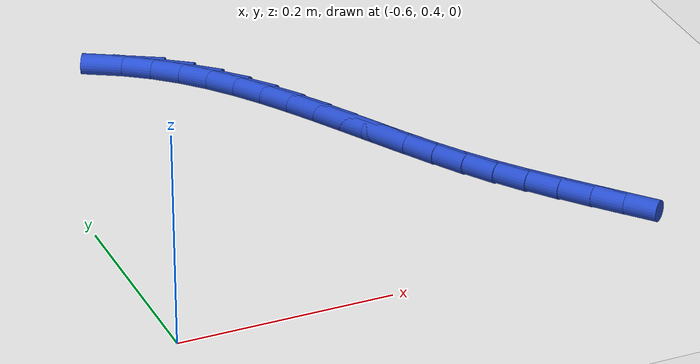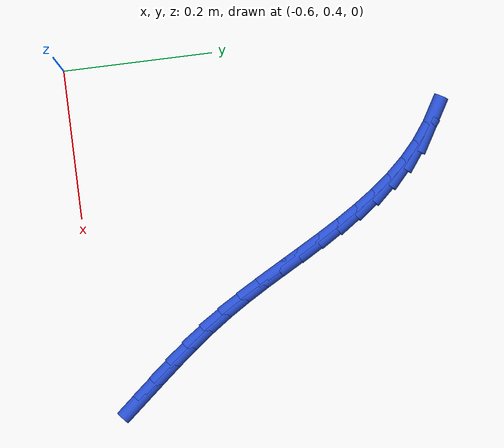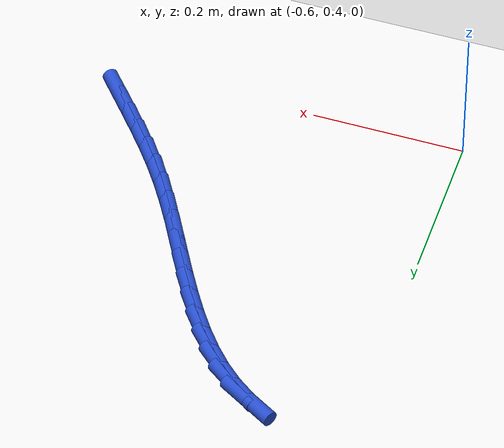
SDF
<sdf version="1.6">
 <world name="default">
  <model name="ground_plane">
   <static>1</static>
   <link name="link">
    <collision name="collision">
     <geometry><plane><normal>0 0 1</normal><size>100 100</size></plane></geometry>
     <surface><friction><ode><mu>100</mu><mu2>50</mu2></ode></friction></surface>
    </collision>
    <visual name="visual">
     <cast_shadows>0</cast_shadows>
     <geometry><plane><normal>0 0 1</normal><size>100 100</size></plane></geometry>
     <material>
      <script><uri>file://media/materials/scripts/gazebo.material</uri><name>Gazebo/WhiteGlow</name></script>
     </material>
    </visual>
   </link>
  </model>
  <model name="line">
   <link name="link_16">
    <pose>-0.1556191127891852 0.45315294590504357 0.01 0 1.57 -0.8655565255962655</pose>
    <collision name="collision">
     <geometry><cylinder><radius>0.01</radius><length>0.08</length></cylinder></geometry>
    </collision>
    <visual name="visual">
     <material>
      <script><name>Gazebo/Blue</name><uri>file://media/materials/scripts/gazebo.material</uri></script>
     </material>
     <geometry><cylinder><radius>0.01</radius><length>0.08</length></cylinder></geometry>
    </visual>
   </link>
   <link name="link_17">
    <pose>-0.17596195966174907 0.4770495711044794 0.01 0 1.57 -0.872697957210107</pose>
    <collision name="collision">
     <geometry><cylinder><radius>0.01</radius><length>0.08</length></cylinder></geometry>
    </collision>
    <visual name="visual">
     <material>
      <script><name>Gazebo/Blue</name><uri>file://media/materials/scripts/gazebo.material</uri></script>
     </material>
     <geometry><cylinder><radius>0.01</radius><length>0.08</length></cylinder></geometry>
    </visual>
   </link>
   <link name="link_18">
    <pose>-0.19624529197877905 0.501223941599826 0.01 0 1.57 -0.8910345357654627</pose>
    <collision name="collision">
     <geometry><cylinder><radius>0.01</radius><length>0.08</length></cylinder></geometry>
    </collision>
    <visual name="visual">
     <material>
      <script><name>Gazebo/Blue</name><uri>file://media/materials/scripts/gazebo.material</uri></script>
     </material>
     <geometry><cylinder><radius>0.01</radius><length>0.08</length></cylinder></geometry>
    </visual>
   </link>
   <link name="link_19">
    <pose>-0.21616844110531708 0.5258731448446303 0.01 0 1.57 -0.920469339215087</pose>
    <collision name="collision">
     <geometry><cylinder><radius>0.01</radius><length>0.08</length></cylinder></geometry>
    </collision>
    <visual name="visual">
     <material>
      <script><name>Gazebo/Blue</name><uri>file://media/materials/scripts/gazebo.material</uri></script>
     </material>
     <geometry><cylinder><radius>0.01</radius><length>0.08</length></cylinder></geometry>
    </visual>
   </link>
   <link name="link_20">
    <pose>-0.235430738406405 0.5511942682924398 0.01 0 1.57 -0.96083028017635</pose>
    <collision name="collision">
     <geometry><cylinder><radius>0.01</radius><length>0.08</length></cylinder></geometry>
    </collision>
    <visual name="visual">
     <material>
      <script><name>Gazebo/Blue</name><uri>file://media/materials/scripts/gazebo.material</uri></script>
     </material>
     <geometry><cylinder><radius>0.01</radius><length>0.08</length></cylinder></geometry>
    </visual>
   </link>
   <link name="link_21">
    <pose>-0.25373319038439 0.5773829669955516 0.01 0 1.57 -1.0042836720142712</pose>
    <collision name="collision">
     <geometry><cylinder><radius>0.01</radius><length>0.08</length></cylinder></geometry>
    </collision>
    <visual name="visual">
     <material>
      <script><name>Gazebo/Blue</name><uri>file://media/materials/scripts/gazebo.material</uri></script>
     </material>
     <geometry><cylinder><radius>0.01</radius><length>0.08</length></cylinder></geometry>
    </visual>
   </link>
   <link name="link_22">
    <pose>-0.2709647914809507 0.6044741484911897 0.01 0 1.57 -1.0364075297354607</pose>
    <collision name="collision">
     <geometry><cylinder><radius>0.01</radius><length>0.08</length></cylinder></geometry>
    </collision>
    <visual name="visual">
     <material>
      <script><name>Gazebo/Blue</name><uri>file://media/materials/scripts/gazebo.material</uri></script>
     </material>
     <geometry><cylinder><radius>0.01</radius><length>0.08</length></cylinder></geometry>
    </visual>
   </link>
   <link name="link_23">
    <pose>-0.2873719839273866 0.6321970685595827 0.01 0 1.57 -1.0559378814561677</pose>
    <collision name="collision">
     <geometry><cylinder><radius>0.01</radius><length>0.08</length></cylinder></geometry>
    </collision>
    <visual name="visual">
     <material>
      <script><name>Gazebo/Blue</name><uri>file://media/materials/scripts/gazebo.material</uri></script>
     </material>
     <geometry><cylinder><radius>0.01</radius><length>0.08</length></cylinder></geometry>
    </visual>
   </link>
   <link name="link_24">
    <pose>-0.30324123016649535 0.6602467619050015 0.01 0 1.57 -1.0630859813531304</pose>
    <collision name="collision">
     <geometry><cylinder><radius>0.01</radius><length>0.08</length></cylinder></geometry>
    </collision>
    <visual name="visual">
     <material>
      <script><name>Gazebo/Blue</name><uri>file://media/materials/scripts/gazebo.material</uri></script>
     </material>
     <geometry><cylinder><radius>0.01</radius><length>0.08</length></cylinder></geometry>
    </visual>
   </link>
   <link name="link_25">
    <pose>-0.31885899264107476 0.6883182632317167 0.01 0 1.57 -1.057811188708045</pose>
    <collision name="collision">
     <geometry><cylinder><radius>0.01</radius><length>0.08</length></cylinder></geometry>
    </collision>
    <visual name="visual">
     <material>
      <script><name>Gazebo/Blue</name><uri>file://media/materials/scripts/gazebo.material</uri></script>
     </material>
     <geometry><cylinder><radius>0.01</radius><length>0.08</length></cylinder></geometry>
    </visual>
   </link>
   <link name="link_26">
    <pose>-0.33451173379392257 0.7161066072439994 0.01 0 1.57 -1.0397812821511725</pose>
    <collision name="collision">
     <geometry><cylinder><radius>0.01</radius><length>0.08</length></cylinder></geometry>
    </collision>
    <visual name="visual">
     <material>
      <script><name>Gazebo/Blue</name><uri>file://media/materials/scripts/gazebo.material</uri></script>
     </material>
     <geometry><cylinder><radius>0.01</radius><length>0.08</length></cylinder></geometry>
    </visual>
   </link>
   <link name="link_27">
    <pose>-0.3504859160678367 0.7433068286461207 0.01 0 1.57 -1.008375818661642</pose>
    <collision name="collision">
     <geometry><cylinder><radius>0.01</radius><length>0.08</length></cylinder></geometry>
    </collision>
    <visual name="visual">
     <material>
      <script><name>Gazebo/Blue</name><uri>file://media/materials/scripts/gazebo.material</uri></script>
     </material>
     <geometry><cylinder><radius>0.01</radius><length>0.08</length></cylinder></geometry>
    </visual>
   </link>
   <link name="link_28">
    <pose>-0.3670680019056146 0.7696139621423512 0.01 0 1.57 -0.962745701899153</pose>
    <collision name="collision">
     <geometry><cylinder><radius>0.01</radius><length>0.08</length></cylinder></geometry>
    </collision>
    <visual name="visual">
     <material>
      <script><name>Gazebo/Blue</name><uri>file://media/materials/scripts/gazebo.material</uri></script>
     </material>
     <geometry><cylinder><radius>0.01</radius><length>0.08</length></cylinder></geometry>
    </visual>
   </link>
   <link name="link_29">
    <pose>-0.3845444537500541 0.7947230424369613 0.01 0 1.57 -0.9019613113625815</pose>
    <collision name="collision">
     <geometry><cylinder><radius>0.01</radius><length>0.08</length></cylinder></geometry>
    </collision>
    <visual name="visual">
     <material>
      <script><name>Gazebo/Blue</name><uri>file://media/materials/scripts/gazebo.material</uri></script>
     </material>
     <geometry><cylinder><radius>0.01</radius><length>0.08</length></cylinder></geometry>
    </visual>
   </link>
   <link name="link_30">
    <pose>-0.40320173404395304 0.8183291042342227 0.01 0 1.57 -0.8252958983222832</pose>
    <collision name="collision">
     <geometry><cylinder><radius>0.01</radius><length>0.08</length></cylinder></geometry>
    </collision>
    <visual name="visual">
     <material>
      <script><name>Gazebo/Blue</name><uri>file://media/materials/scripts/gazebo.material</uri></script>
     </material>
     <geometry><cylinder><radius>0.01</radius><length>0.08</length></cylinder></geometry>
    </visual>
   </link>
   <link name="link_31">
    <pose>-0.42332630523010895 0.8401271822384054 0.01 0 1.57 -0.7326796513070319</pose>
    <collision name="collision">
     <geometry><cylinder><radius>0.01</radius><length>0.08</length></cylinder></geometry>
    </collision>
    <visual name="visual">
     <material>
      <script><name>Gazebo/Blue</name><uri>file://media/materials/scripts/gazebo.material</uri></script>
     </material>
     <geometry><cylinder><radius>0.01</radius><length>0.08</length></cylinder></geometry>
    </visual>
   </link>
   <link name="link_32">
    <pose>-0.44520462975131975 0.8598123111537808 0.01 0 1.57 -0.6261209004929671</pose>
    <collision name="collision">
     <geometry><cylinder><radius>0.01</radius><length>0.08</length></cylinder></geometry>
    </collision>
    <visual name="visual">
     <material>
      <script><name>Gazebo/Blue</name><uri>file://media/materials/scripts/gazebo.material</uri></script>
     </material>
     <geometry><cylinder><radius>0.01</radius><length>0.08</length></cylinder></geometry>
    </visual>
   </link>
   <link name="link_33">
    <pose>-0.4691055232478807 0.8770972029817375 0.01 0 1.57 -0.5225299405900189</pose>
    <collision name="collision">
     <geometry><cylinder><radius>0.01</radius><length>0.08</length></cylinder></geometry>
    </collision>
    <visual name="visual">
     <material>
      <script><name>Gazebo/Blue</name><uri>file://media/materials/scripts/gazebo.material</uri></script>
     </material>
     <geometry><cylinder><radius>0.01</radius><length>0.08</length></cylinder></geometry>
    </visual>
   </link>
  </model>
 </world>
</sdf>
